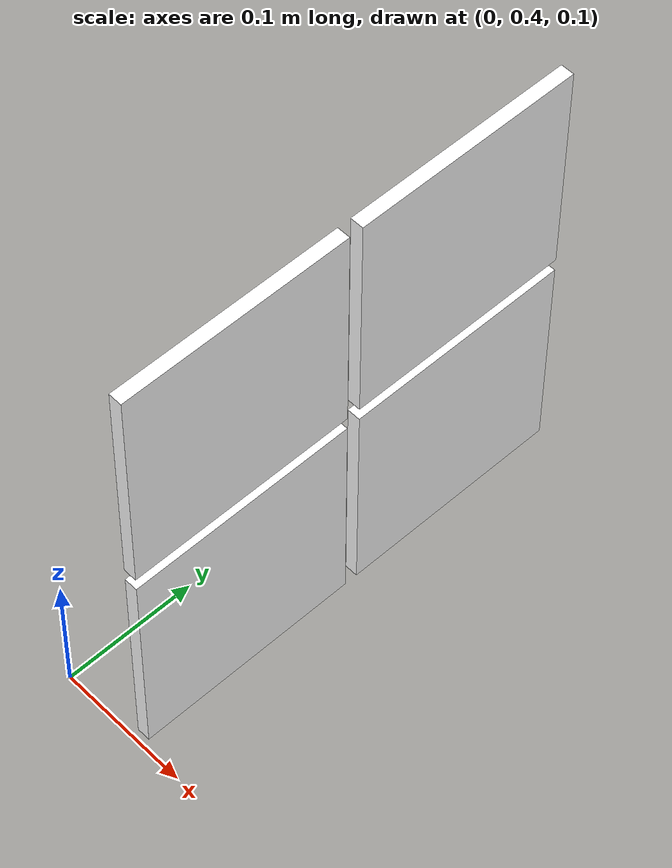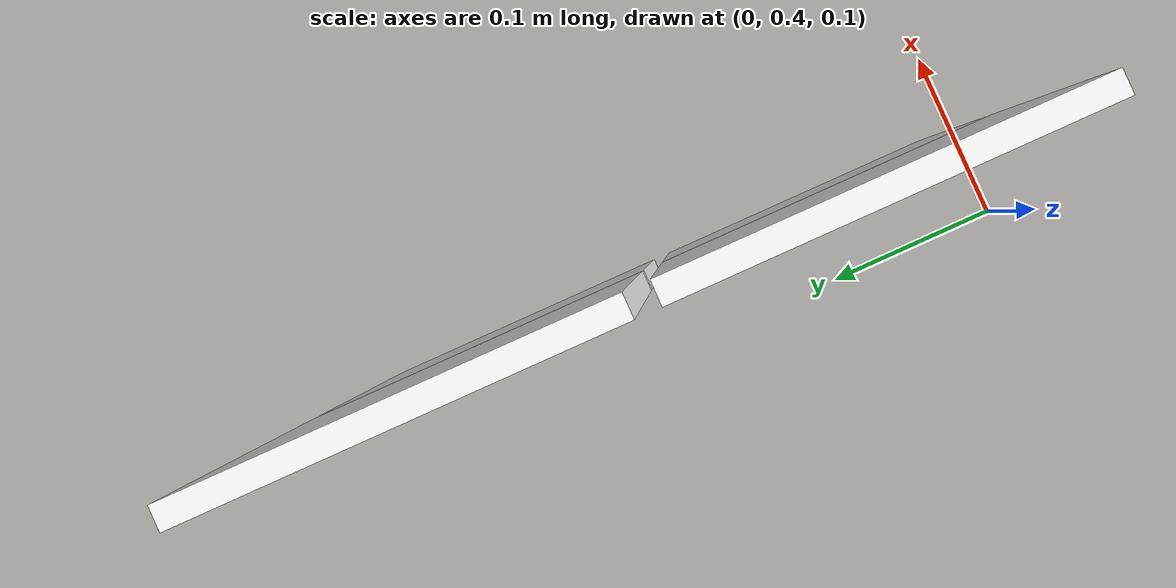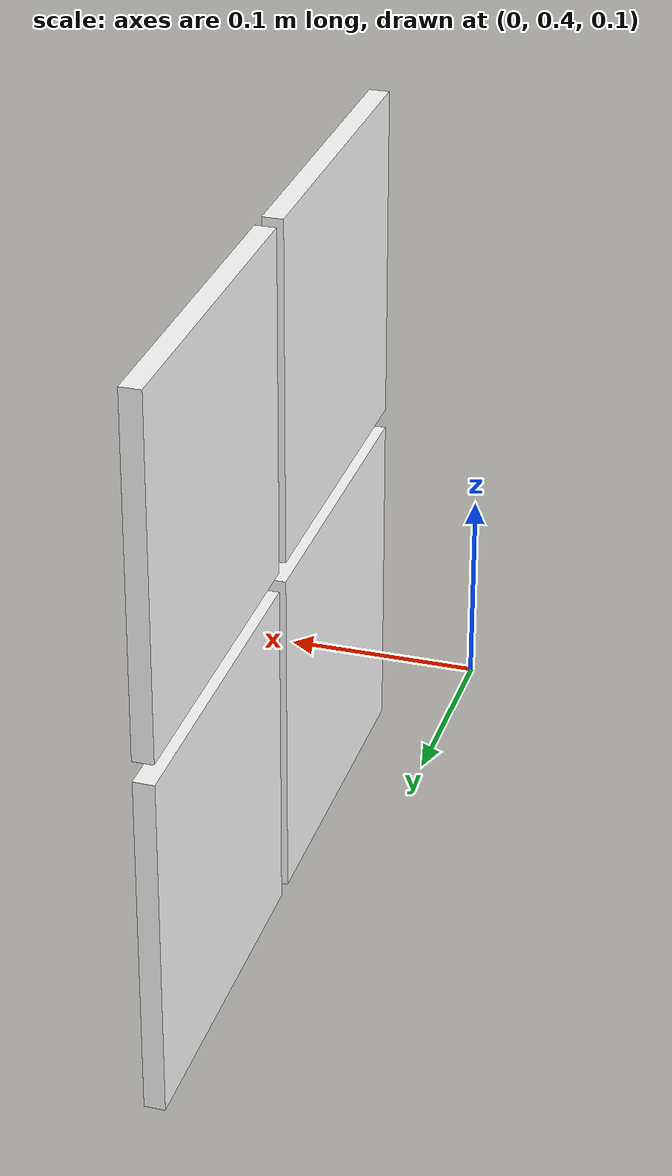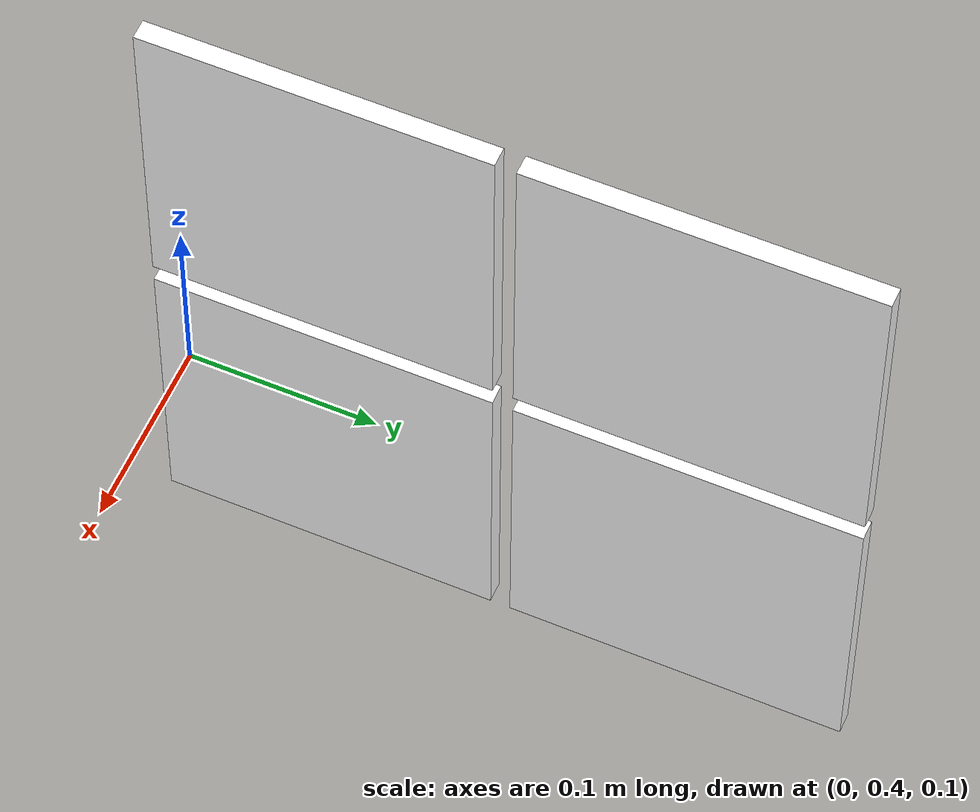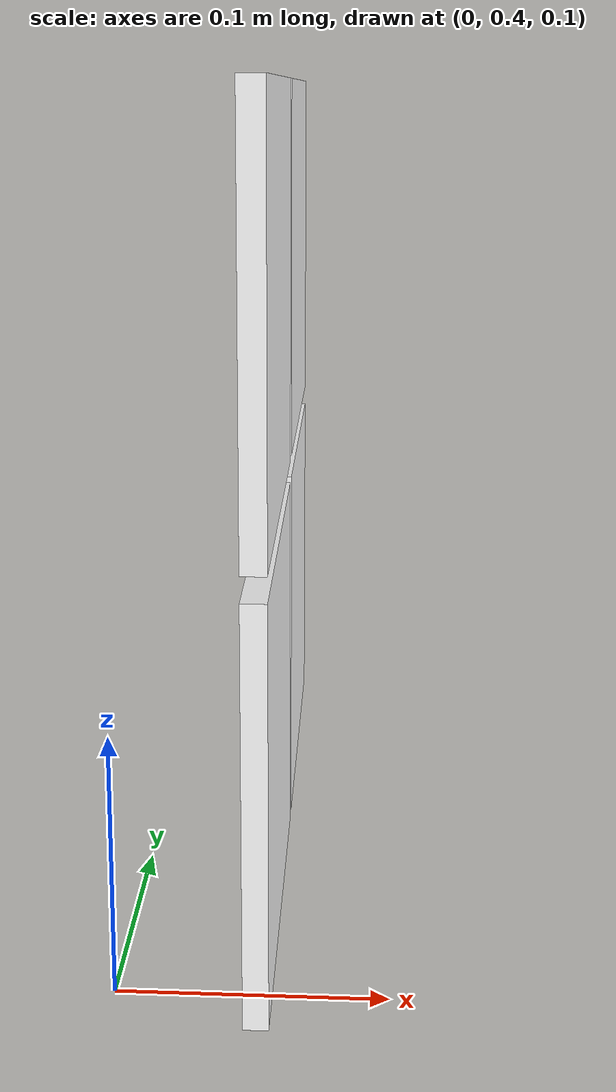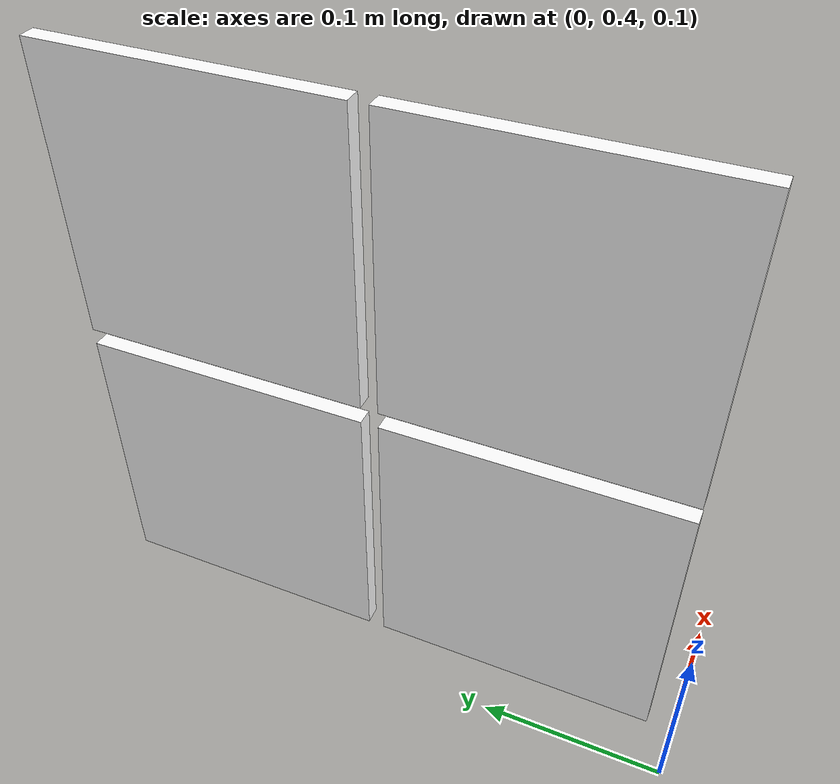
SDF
<sdf version="1.4">
 <world name="arena">
  <plugin filename="gz-sim-physics-system" name="gz::sim::systems::Physics"/>
  <plugin filename="gz-sim-user-commands-system" name="gz::sim::systems::UserCommands"/>
  <plugin filename="gz-sim-scene-broadcaster-system" name="gz::sim::systems::SceneBroadcaster"/>
  <plugin filename="gz-sim-sensors-system" name="gz::sim::systems::Sensors">
   <render_engine>ogre</render_engine>
  </plugin>
  <include><uri>model://sun</uri></include>
  <include><uri>model://apriltag_board</uri><pose>0.05 0.5 0.34 0 1.57 0</pose></include>
  <physics type="dart">
   <dart><collision_detector>bullet</collision_detector></dart>
   <max_step_size>0.001</max_step_size>
   <real_time_factor>1</real_time_factor>
   <real_time_update_rate>1000</real_time_update_rate>
   <gravity>0 0 -9.81</gravity>
  </physics>
 </world>
</sdf>

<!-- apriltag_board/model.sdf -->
<sdf version='1.7'>
  <model name='apriltag_board'>
    <link name='tag_0'>
      <pose>0 0 0 0 -0 0</pose>
      <visual name='main_Visual'>
      <pose>0 0 0 0 0 3.14159</pose>
        <geometry>
          <box>
            <size>0.17 0.17 0.01</size>
          </box>
        </geometry>
        <material>
          <ambient>1 1 1 1</ambient>
          <diffuse>1 1 1 1</diffuse>
          <specular>0.1 0.1 0.1 1</specular>
          <pbr>
            <metal>
              <albedo_map>model://Apriltag36_11_00000/materials/textures/tag36_11_00000.png</albedo_map>
              <roughness>0.9</roughness>
              <metalness>0</metalness>
            </metal>
          </pbr>
          <script>
            <uri>model://Apriltag36_11_00000/materials/scripts</uri>
            <uri>model://Apriltag36_11_00000/materials/textures</uri>
            <name>Apriltag36_11_00000</name>
          </script>
        </material>
      </visual>
      <self_collide>0</self_collide>
      <enable_wind>0</enable_wind>
      <kinematic>0</kinematic>
    </link>
    <link name='tag_1'>
      <pose>0.18 0 0 0 -0 0</pose>
      <visual name='main_Visual'>
      <pose>0 0 0 0 0 3.14159</pose>
        <geometry>
          <box>
            <size>0.17 0.17 0.01</size>
          </box>
        </geometry>
        <material>
          <ambient>1 1 1 1</ambient>
          <diffuse>1 1 1 1</diffuse>
          <specular>0.1 0.1 0.1 1</specular>
          <pbr>
            <metal>
              <albedo_map>model://Apriltag36_11_00001/materials/textures/tag36_11_00001.png</albedo_map>
              <roughness>0.9</roughness>
              <metalness>0</metalness>
            </metal>
          </pbr>
          <script>
            <uri>model://Apriltag36_11_00001/materials/scripts</uri>
            <uri>model://Apriltag36_11_00001/materials/textures</uri>
            <name>Apriltag36_11_00001</name>
          </script>
        </material>
      </visual>
      <self_collide>0</self_collide>
      <enable_wind>0</enable_wind>
      <kinematic>0</kinematic>
    </link>
    <link name='tag_2'>
      <pose>0.18 0.18 0 0 -0 0</pose>
      <visual name='main_Visual'>
      <pose>0 0 0 0 0 3.14159</pose>
        <geometry>
          <box>
            <size>0.17 0.17 0.01</size>
          </box>
        </geometry>
        <material>
          <ambient>1 1 1 1</ambient>
          <diffuse>1 1 1 1</diffuse>
          <specular>0.1 0.1 0.1 1</specular>
          <pbr>
            <metal>
              <albedo_map>model://Apriltag36_11_00002/materials/textures/tag36_11_00002.png</albedo_map>
              <roughness>0.9</roughness>
              <metalness>0</metalness>
            </metal>
          </pbr>
          <script>
            <uri>model://Apriltag36_11_00002/materials/scripts</uri>
            <uri>model://Apriltag36_11_00002/materials/textures</uri>
            <name>Apriltag36_11_00002</name>
          </script>
        </material>
      </visual>
      <self_collide>0</self_collide>
      <enable_wind>0</enable_wind>
      <kinematic>0</kinematic>
    </link>
    <link name='tag_3'>
      <pose>0 0.18 0 0 -0 0</pose>
      <visual name='main_Visual'>
      <pose>0 0 0 0 0 3.14159</pose>
        <geometry>
          <box>
            <size>0.17 0.17 0.01</size>
          </box>
        </geometry>
        <material>
          <ambient>1 1 1 1</ambient>
          <diffuse>1 1 1 1</diffuse>
          <specular>0.1 0.1 0.1 1</specular>
          <pbr>
            <metal>
              <albedo_map>model://Apriltag36_11_00003/materials/textures/tag36_11_00003.png</albedo_map>
              <roughness>0.9</roughness>
              <metalness>0</metalness>
            </metal>
          </pbr>
          <script>
            <uri>model://Apriltag36_11_00003/materials/scripts</uri>
            <uri>model://Apriltag36_11_00003/materials/textures</uri>
            <name>Apriltag36_11_00003</name>
          </script>
        </material>
      </visual>
      <self_collide>0</self_collide>
      <enable_wind>0</enable_wind>
      <kinematic>0</kinematic>
    </link>
    <static>1</static>
  </model>
</sdf>
